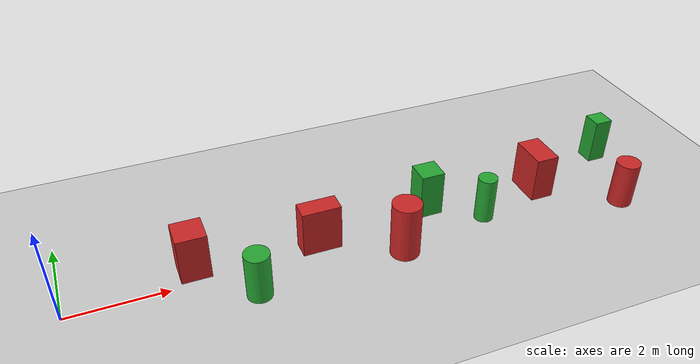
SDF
<?xml version="1.0" ?>
<sdf version="1.6">
  <world name="mixed_obstacles_test">

    <!-- Physics -->
    <physics type="ode">
      <real_time_update_rate>1000</real_time_update_rate>
      <max_step_size>0.001</max_step_size>
      <real_time_factor>1</real_time_factor>
      <ode>
        <solver>
          <type>quick</type>
          <iters>50</iters>
          <sor>1.3</sor>
        </solver>
        <constraints>
          <cfm>0</cfm>
          <erp>0.2</erp>
          <contact_max_correcting_vel>100</contact_max_correcting_vel>
          <contact_surface_layer>0.001</contact_surface_layer>
        </constraints>
      </ode>
    </physics>

    <!-- Sun -->
    <light name="sun" type="directional">
      <cast_shadows>true</cast_shadows>
      <pose>0 0 10 0 0 0</pose>
      <diffuse>0.8 0.8 0.8 1</diffuse>
      <specular>0.2 0.2 0.2 1</specular>
      <direction>-0.5 0.1 -0.9</direction>
    </light>

    <!-- Ground Plane -->
    <model name="ground_plane">
      <static>true</static>
      <link name="link">
        <collision name="collision">
          <geometry>
            <plane>
              <normal>0 0 1</normal>
              <size>100 100</size>
            </plane>
          </geometry>
          <surface>
            <friction>
              <ode><mu>1</mu><mu2>1</mu2></ode>
            </friction>
          </surface>
        </collision>
        <visual name="visual">
          <cast_shadows>false</cast_shadows>
          <geometry>
            <plane>
              <normal>0 0 1</normal>
              <size>100 100</size>
            </plane>
          </geometry>
          <material>
            <script>
              <uri>file://media/materials/scripts/gazebo.material</uri>
              <name>Gazebo/Grey</name>
            </script>
          </material>
        </visual>
      </link>
    </model>

    <!-- ── SOLID BOX A — 0.6×0.6×1.0 m, 200 kg, x=2.5 y=+0.4 ─────── -->
    <model name="box_solid_A">
      <pose>2.5 0.4 0.5 0 0 0</pose>
      <link name="link">
        <inertial>
          <mass>200.0</mass>
          <!-- Ixx=Iyy=200/12*(0.36+1.0)=22.667  Izz=200/12*(0.36+0.36)=12.0 -->
          <inertia>
            <ixx>22.667</ixx><ixy>0</ixy><ixz>0</ixz>
            <iyy>22.667</iyy><iyz>0</iyz>
            <izz>12.0</izz>
          </inertia>
        </inertial>
        <collision name="collision">
          <geometry><box><size>0.6 0.6 1.0</size></box></geometry>
          <surface>
            <friction><ode><mu>0.8</mu><mu2>0.8</mu2></ode></friction>
          </surface>
        </collision>
        <visual name="visual">
          <geometry><box><size>0.6 0.6 1.0</size></box></geometry>
          <material>
            <script>
              <uri>file://media/materials/scripts/gazebo.material</uri>
              <name>Gazebo/Red</name>
            </script>
          </material>
        </visual>
      </link>
    </model>

    <!-- ── MOVABLE CYLINDER A — r=0.25 h=1.0 m, 5 kg, x=3.5 y=-0.7 ── -->
    <model name="cyl_movable_A">
      <pose>3.5 -0.7 0.5 0 0 0</pose>
      <link name="link">
        <inertial>
          <mass>5.0</mass>
          <!-- Ixx=Iyy=5*(3*0.0625+1.0)/12=0.495  Izz=5*0.0625/2=0.156 -->
          <inertia>
            <ixx>0.495</ixx><ixy>0</ixy><ixz>0</ixz>
            <iyy>0.495</iyy><iyz>0</iyz>
            <izz>0.156</izz>
          </inertia>
        </inertial>
        <collision name="collision">
          <geometry><cylinder><radius>0.25</radius><length>1.0</length></cylinder></geometry>
          <surface>
            <friction><ode><mu>0.05</mu><mu2>0.05</mu2></ode></friction>
          </surface>
        </collision>
        <visual name="visual">
          <geometry><cylinder><radius>0.25</radius><length>1.0</length></cylinder></geometry>
          <material>
            <script>
              <uri>file://media/materials/scripts/gazebo.material</uri>
              <name>Gazebo/Green</name>
            </script>
          </material>
        </visual>
      </link>
    </model>

    <!-- ── SOLID BOX B — 0.8×0.4×1.0 m, 200 kg, x=5.0 y=+0.2 ──────── -->
    <model name="box_solid_B">
      <pose>5.0 0.2 0.5 0 0 0</pose>
      <link name="link">
        <inertial>
          <mass>200.0</mass>
          <!-- Ixx=200/12*(0.16+1.0)=19.333  Iyy=200/12*(0.64+1.0)=27.333  Izz=200/12*0.80=13.333 -->
          <inertia>
            <ixx>19.333</ixx><ixy>0</ixy><ixz>0</ixz>
            <iyy>27.333</iyy><iyz>0</iyz>
            <izz>13.333</izz>
          </inertia>
        </inertial>
        <collision name="collision">
          <geometry><box><size>0.8 0.4 1.0</size></box></geometry>
          <surface>
            <friction><ode><mu>0.8</mu><mu2>0.8</mu2></ode></friction>
          </surface>
        </collision>
        <visual name="visual">
          <geometry><box><size>0.8 0.4 1.0</size></box></geometry>
          <material>
            <script>
              <uri>file://media/materials/scripts/gazebo.material</uri>
              <name>Gazebo/Red</name>
            </script>
          </material>
        </visual>
      </link>
    </model>

    <!-- ── SOLID CYLINDER A — r=0.30 h=1.2 m, 200 kg, x=6.5 y=-0.6 ── -->
    <model name="cyl_solid_A">
      <pose>6.5 -0.6 0.6 0 0 0</pose>
      <link name="link">
        <inertial>
          <mass>200.0</mass>
          <!-- Ixx=Iyy=200*(3*0.09+1.44)/12=28.5  Izz=200*0.09/2=9.0 -->
          <inertia>
            <ixx>28.5</ixx><ixy>0</ixy><ixz>0</ixz>
            <iyy>28.5</iyy><iyz>0</iyz>
            <izz>9.0</izz>
          </inertia>
        </inertial>
        <collision name="collision">
          <geometry><cylinder><radius>0.3</radius><length>1.2</length></cylinder></geometry>
          <surface>
            <friction><ode><mu>0.8</mu><mu2>0.8</mu2></ode></friction>
          </surface>
        </collision>
        <visual name="visual">
          <geometry><cylinder><radius>0.3</radius><length>1.2</length></cylinder></geometry>
          <material>
            <script>
              <uri>file://media/materials/scripts/gazebo.material</uri>
              <name>Gazebo/Red</name>
            </script>
          </material>
        </visual>
      </link>
    </model>

    <!-- ── MOVABLE BOX A — 0.5×0.5×1.0 m, 5 kg, x=7.5 y=+0.5 ──────── -->
    <model name="box_movable_A">
      <pose>7.5 0.5 0.5 0 0 0</pose>
      <link name="link">
        <inertial>
          <mass>5.0</mass>
          <!-- Ixx=Iyy=5/12*(0.25+1.0)=0.521  Izz=5/12*(0.25+0.25)=0.208 -->
          <inertia>
            <ixx>0.521</ixx><ixy>0</ixy><ixz>0</ixz>
            <iyy>0.521</iyy><iyz>0</iyz>
            <izz>0.208</izz>
          </inertia>
        </inertial>
        <collision name="collision">
          <geometry><box><size>0.5 0.5 1.0</size></box></geometry>
          <surface>
            <friction><ode><mu>0.05</mu><mu2>0.05</mu2></ode></friction>
          </surface>
        </collision>
        <visual name="visual">
          <geometry><box><size>0.5 0.5 1.0</size></box></geometry>
          <material>
            <script>
              <uri>file://media/materials/scripts/gazebo.material</uri>
              <name>Gazebo/Green</name>
            </script>
          </material>
        </visual>
      </link>
    </model>

    <!-- ── MOVABLE CYLINDER B — r=0.20 h=1.0 m, 5 kg, x=8.5 y=-0.2 ── -->
    <model name="cyl_movable_B">
      <pose>8.5 -0.2 0.5 0 0 0</pose>
      <link name="link">
        <inertial>
          <mass>5.0</mass>
          <!-- Ixx=Iyy=5*(3*0.04+1.0)/12=0.467  Izz=5*0.04/2=0.1 -->
          <inertia>
            <ixx>0.467</ixx><ixy>0</ixy><ixz>0</ixz>
            <iyy>0.467</iyy><iyz>0</iyz>
            <izz>0.1</izz>
          </inertia>
        </inertial>
        <collision name="collision">
          <geometry><cylinder><radius>0.2</radius><length>1.0</length></cylinder></geometry>
          <surface>
            <friction><ode><mu>0.05</mu><mu2>0.05</mu2></ode></friction>
          </surface>
        </collision>
        <visual name="visual">
          <geometry><cylinder><radius>0.2</radius><length>1.0</length></cylinder></geometry>
          <material>
            <script>
              <uri>file://media/materials/scripts/gazebo.material</uri>
              <name>Gazebo/Green</name>
            </script>
          </material>
        </visual>
      </link>
    </model>

    <!-- ── SOLID BOX C — 0.5×0.8×1.0 m, 200 kg, x=10.0 y=+0.3 ──────── -->
    <model name="box_solid_C">
      <pose>10.0 0.3 0.5 0 0 0</pose>
      <link name="link">
        <inertial>
          <mass>200.0</mass>
          <!-- Ixx=200/12*(0.64+1.0)=27.333  Iyy=200/12*(0.25+1.0)=20.833  Izz=200/12*0.89=14.833 -->
          <inertia>
            <ixx>27.333</ixx><ixy>0</ixy><ixz>0</ixz>
            <iyy>20.833</iyy><iyz>0</iyz>
            <izz>14.833</izz>
          </inertia>
        </inertial>
        <collision name="collision">
          <geometry><box><size>0.5 0.8 1.0</size></box></geometry>
          <surface>
            <friction><ode><mu>0.8</mu><mu2>0.8</mu2></ode></friction>
          </surface>
        </collision>
        <visual name="visual">
          <geometry><box><size>0.5 0.8 1.0</size></box></geometry>
          <material>
            <script>
              <uri>file://media/materials/scripts/gazebo.material</uri>
              <name>Gazebo/Red</name>
            </script>
          </material>
        </visual>
      </link>
    </model>

    <!-- ── SOLID CYLINDER B — r=0.25 h=1.0 m, 200 kg, x=11.5 y=-0.8 ─ -->
    <model name="cyl_solid_B">
      <pose>11.5 -0.8 0.5 0 0 0</pose>
      <link name="link">
        <inertial>
          <mass>200.0</mass>
          <!-- Ixx=Iyy=200*(3*0.0625+1.0)/12=19.792  Izz=200*0.0625/2=6.25 -->
          <inertia>
            <ixx>19.792</ixx><ixy>0</ixy><ixz>0</ixz>
            <iyy>19.792</iyy><iyz>0</iyz>
            <izz>6.25</izz>
          </inertia>
        </inertial>
        <collision name="collision">
          <geometry><cylinder><radius>0.25</radius><length>1.0</length></cylinder></geometry>
          <surface>
            <friction><ode><mu>0.8</mu><mu2>0.8</mu2></ode></friction>
          </surface>
        </collision>
        <visual name="visual">
          <geometry><cylinder><radius>0.25</radius><length>1.0</length></cylinder></geometry>
          <material>
            <script>
              <uri>file://media/materials/scripts/gazebo.material</uri>
              <name>Gazebo/Red</name>
            </script>
          </material>
        </visual>
      </link>
    </model>

    <!-- ── MOVABLE BOX B — 0.4×0.4×1.0 m, 5 kg, x=12.0 y=+0.9 ──────── -->
    <model name="box_movable_B">
      <pose>12.0 0.9 0.5 0 0 0</pose>
      <link name="link">
        <inertial>
          <mass>5.0</mass>
          <!-- Ixx=Iyy=5/12*(0.16+1.0)=0.483  Izz=5/12*(0.16+0.16)=0.133 -->
          <inertia>
            <ixx>0.483</ixx><ixy>0</ixy><ixz>0</ixz>
            <iyy>0.483</iyy><iyz>0</iyz>
            <izz>0.133</izz>
          </inertia>
        </inertial>
        <collision name="collision">
          <geometry><box><size>0.4 0.4 1.0</size></box></geometry>
          <surface>
            <friction><ode><mu>0.05</mu><mu2>0.05</mu2></ode></friction>
          </surface>
        </collision>
        <visual name="visual">
          <geometry><box><size>0.4 0.4 1.0</size></box></geometry>
          <material>
            <script>
              <uri>file://media/materials/scripts/gazebo.material</uri>
              <name>Gazebo/Green</name>
            </script>
          </material>
        </visual>
      </link>
    </model>

    <!-- Scene -->
    <scene>
      <ambient>0.4 0.4 0.4 1</ambient>
      <background>0.7 0.7 0.7 1</background>
      <shadows>true</shadows>
    </scene>

    <!-- Camera — bird's eye view tilted along +X -->
    <gui fullscreen="0">
      <camera name="user_camera">
        <pose>7 -10 4 0 0.35 1.57</pose>
        <view_controller>orbit</view_controller>
      </camera>
    </gui>

  </world>
</sdf>
